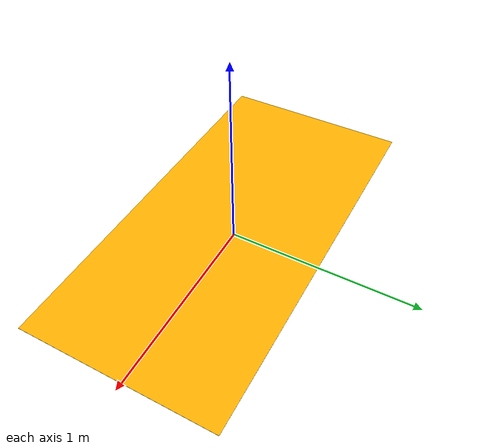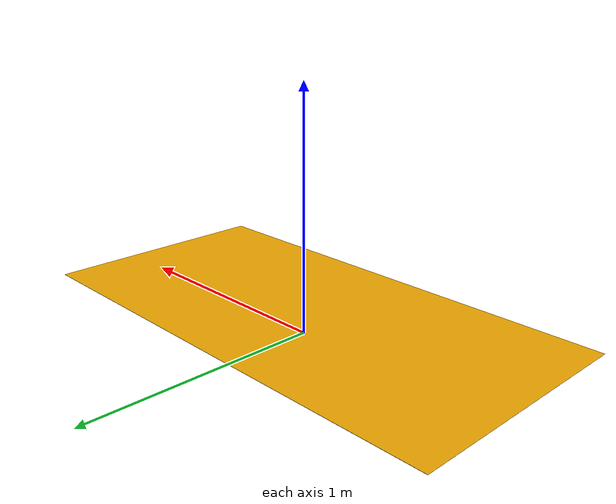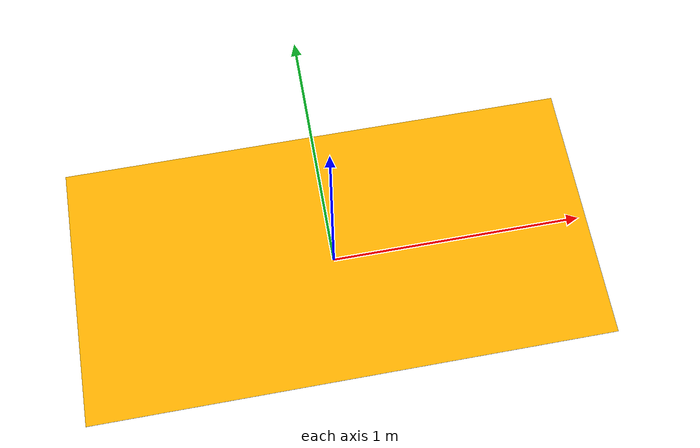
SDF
<?xml version="1.0" ?>
<sdf version="1.6">
  <world name="test_plane">

    <scene>
      <ambient>1 1 1 1</ambient>
      <background>0.8 0.8 0.8 1</background>
      <shadows>false</shadows>
    </scene>

    <include>
      <uri>model://sun</uri>
    </include>

    <model name="yellow_plane_test">
      <static>true</static>
      <pose>0 0 0.1 0 0 0</pose>

      <link name="link">
        <visual name="visual">
          <geometry>
            <plane>
              <normal>0 0 1</normal>
              <size>2 1</size>
            </plane>
          </geometry>

          <cast_shadows>false</cast_shadows>

          <material>
            <ambient>1 0.7 0 1</ambient>
            <diffuse>1 0.7 0 1</diffuse>
            <emissive>1 0.7 0 1</emissive>
          </material>

        </visual>
      </link>
    </model>

  </world>
</sdf>
